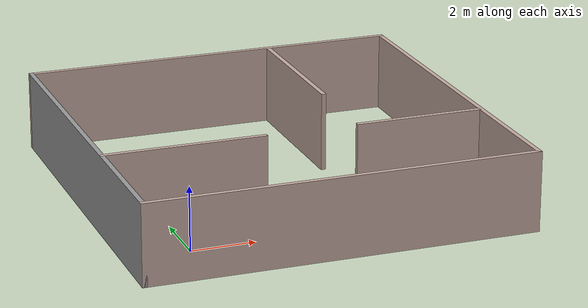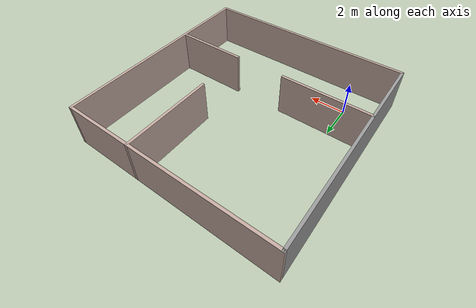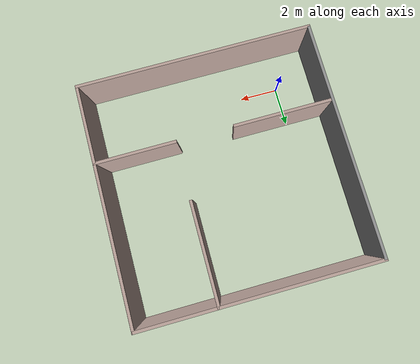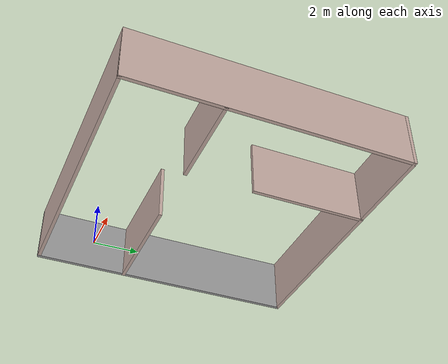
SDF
<?xml version='1.0'?>
<sdf version='1.6'>
  <model name='virtual_room'>
    <pose frame=''>4 4 0 0 -0 0</pose>
    <link name='Wall_0'>
      <collision name='Wall_0_Collision'>
        <geometry>
          <box>
            <size>12.15 0.15 2.5</size>
          </box>
        </geometry>
        <pose frame=''>0 0 1.25 0 -0 0</pose>
      </collision>
      <visual name='Wall_0_Visual'>
        <pose frame=''>0 0 1.25 0 -0 0</pose>
        <geometry>
          <box>
            <size>12.15 0.15 2.5</size>
          </box>
        </geometry>
        <material>
          <script>
            <uri>file://media/materials/scripts/gazebo.material</uri>
            <name>Gazebo/Grey</name>
          </script>
          <ambient>0.760784 0.662745 0.627451 1</ambient>
        </material>
        <meta>
          <layer>0</layer>
        </meta>
      </visual>
      <pose frame=''>0 -6 0 0 -0 0</pose>
    </link>
    <link name='Wall_1'>
      <collision name='Wall_1_Collision'>
        <geometry>
          <box>
            <size>12.15 0.15 2.5</size>
          </box>
        </geometry>
        <pose frame=''>0 0 1.25 0 -0 0</pose>
      </collision>
      <visual name='Wall_1_Visual'>
        <pose frame=''>0 0 1.25 0 -0 0</pose>
        <geometry>
          <box>
            <size>12.15 0.15 2.5</size>
          </box>
        </geometry>
        <material>
          <script>
            <uri>file://media/materials/scripts/gazebo.material</uri>
            <name>Gazebo/Grey</name>
          </script>
          <ambient>0.760784 0.662745 0.627451 1</ambient>
        </material>
        <meta>
          <layer>0</layer>
        </meta>
      </visual>
      <pose frame=''>6 0 0 0 -0 1.5708</pose>
    </link>
    <link name='Wall_10'>
      <collision name='Wall_10_Collision'>
        <geometry>
          <box>
            <size>4.15 0.15 2.5</size>
          </box>
        </geometry>
        <pose frame=''>0 0 1.25 0 -0 0</pose>
      </collision>
      <visual name='Wall_10_Visual'>
        <pose frame=''>0 0 1.25 0 -0 0</pose>
        <geometry>
          <box>
            <size>4.15 0.15 2.5</size>
          </box>
        </geometry>
        <material>
          <script>
            <uri>file://media/materials/scripts/gazebo.material</uri>
            <name>Gazebo/Grey</name>
          </script>
          <ambient>0.760784 0.662745 0.627451 1</ambient>
        </material>
        <meta>
          <layer>0</layer>
        </meta>
      </visual>
      <pose frame=''>4 -2 0 0 -0 0</pose>
    </link>
    <link name='Wall_2'>
      <collision name='Wall_2_Collision'>
        <geometry>
          <box>
            <size>12.15 0.15 2.5</size>
          </box>
        </geometry>
        <pose frame=''>0 0 1.25 0 -0 0</pose>
      </collision>
      <visual name='Wall_2_Visual'>
        <pose frame=''>0 0 1.25 0 -0 0</pose>
        <geometry>
          <box>
            <size>12.15 0.15 2.5</size>
          </box>
        </geometry>
        <material>
          <script>
            <uri>file://media/materials/scripts/gazebo.material</uri>
            <name>Gazebo/Grey</name>
          </script>
          <ambient>0.760784 0.662745 0.627451 1</ambient>
        </material>
        <meta>
          <layer>0</layer>
        </meta>
      </visual>
      <pose frame=''>0 6 0 0 -0 3.14159</pose>
    </link>
    <link name='Wall_3'>
      <collision name='Wall_3_Collision'>
        <geometry>
          <box>
            <size>12.15 0.15 2.5</size>
          </box>
        </geometry>
        <pose frame=''>0 0 1.25 0 -0 0</pose>
      </collision>
      <visual name='Wall_3_Visual'>
        <pose frame=''>0 0 1.25 0 -0 0</pose>
        <geometry>
          <box>
            <size>12.15 0.15 2.5</size>
          </box>
        </geometry>
        <material>
          <script>
            <uri>file://media/materials/scripts/gazebo.material</uri>
            <name>Gazebo/Grey</name>
          </script>
          <ambient>1 1 1 1</ambient>
        </material>
        <meta>
          <layer>0</layer>
        </meta>
      </visual>
      <pose frame=''>-6 0 0 0 -0 -1.5708</pose>
    </link>
    <link name='Wall_6'>
      <collision name='Wall_6_Collision'>
        <geometry>
          <box>
            <size>5.15 0.15 2.5</size>
          </box>
        </geometry>
        <pose frame=''>0 0 1.25 0 -0 0</pose>
      </collision>
      <visual name='Wall_6_Visual'>
        <pose frame=''>0 0 1.25 0 -0 0</pose>
        <geometry>
          <box>
            <size>5.15 0.15 2.5</size>
          </box>
        </geometry>
        <material>
          <script>
            <uri>file://media/materials/scripts/gazebo.material</uri>
            <name>Gazebo/Grey</name>
          </script>
          <ambient>0.760784 0.662745 0.627451 1</ambient>
        </material>
        <meta>
          <layer>0</layer>
        </meta>
      </visual>
      <pose frame=''>2 3.5 0 0 -0 -1.5708</pose>
    </link>
    <link name='Wall_8'>
      <collision name='Wall_8_Collision'>
        <geometry>
          <box>
            <size>5.15 0.15 2.5</size>
          </box>
        </geometry>
        <pose frame=''>0 0 1.25 0 -0 0</pose>
      </collision>
      <visual name='Wall_8_Visual'>
        <pose frame=''>0 0 1.25 0 -0 0</pose>
        <geometry>
          <box>
            <size>5.15 0.15 2.5</size>
          </box>
        </geometry>
        <material>
          <script>
            <uri>file://media/materials/scripts/gazebo.material</uri>
            <name>Gazebo/Grey</name>
          </script>
          <ambient>0.760784 0.662745 0.627451 1</ambient>
        </material>
        <meta>
          <layer>0</layer>
        </meta>
      </visual>
      <pose frame=''>-3.5 -2 0 0 -0 0</pose>
    </link>
    <static>1</static>
  </model>
</sdf>
